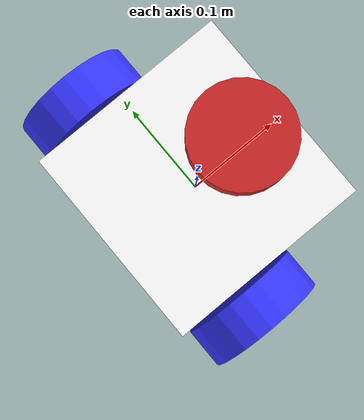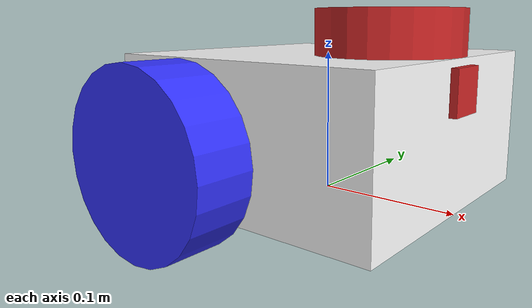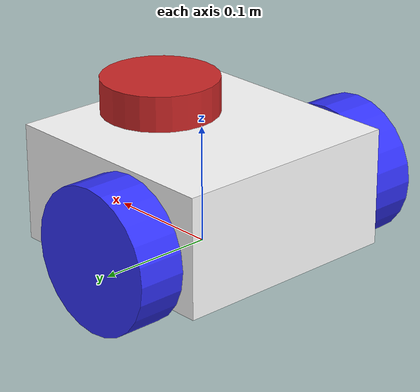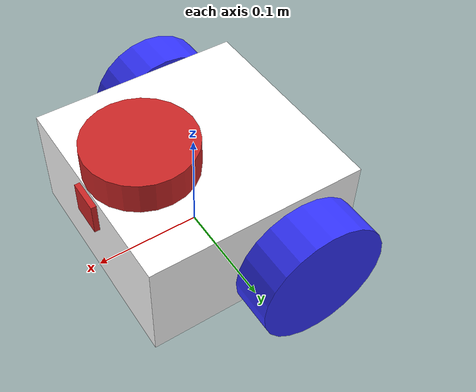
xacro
<?xml version="1.0"?>
<robot xmlns:xacro="http://www.ros.org/wiki/xacro"  name="robot">

    <xacro:include filename="robot_core.xacro" />
    <xacro:include filename="gazebo_control.xacro"/>
    <xacro:include filename="lidar.xacro"/>
    <xacro:include filename="camera.xacro"/>

</robot>

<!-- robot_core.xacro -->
<robot xmlns:xacro="http://www.ros.org/wiki/xacro" >

    <xacro:include filename="inertial_macros.xacro"/>

    <material name="white">
        <color rgba="1 1 1 1" />
    </material>

    <material name="orange">
        <color rgba="1 0.3 0.1 1"/>
    </material>

    <material name="blue">
        <color rgba="0.2 0.2 1 1"/>
    </material>

    <material name="black">
        <color rgba="0 0 0 1"/>
    </material>

    <!-- BASE LINK -->

    <link name="base_link">

    </link>

    <!-- CHASSIS LINK -->

    <joint name="chassis_joint" type="fixed">
        <parent link="base_link"/>
        <child link="chassis"/>
        <origin xyz="-0.1 0 0"/>
    </joint>

    <link name="chassis">
        <visual>
            <origin xyz="0.1 0 0.05"/>
            <geometry>
                <box size="0.2 0.2 0.10"/>
            </geometry>
            <material name="white"/>
        </visual>
        <collision>
            <origin xyz="0.1 0 0.05"/>
            <geometry>
                <box size="0.2 0.2 0.10"/>
            </geometry>
        </collision>
        <xacro:inertial_box mass="0.5" x="0.2" y="0.2" z="0.10">
            <origin xyz="0.1 0 0.05" rpy="0 0 0"/>
        </xacro:inertial_box>
    </link>

    <gazebo reference="chassis">
        <material>Gazebo/White</material>
    </gazebo>

    <!-- LEFT WHEEL LINK -->

    <joint name="left_wheel_joint" type="continuous">
        <parent link="chassis"/>
        <child link="left_wheel"/>
        <origin xyz="0.065 0.125 0.04" rpy="-${pi/2} 0 0" />
        <axis xyz="0 0 1"/>
    </joint>

    <link name="left_wheel">
        <visual>
            <geometry>
                <cylinder radius="0.06" length="0.04"/>
            </geometry>
            <material name="blue"/>
        </visual>
        <collision>
            <geometry>
                <cylinder radius="0.06" length="0.04"/>
            </geometry>
        </collision>
        <xacro:inertial_cylinder mass="0.1" length="0.04" radius="0.06">
            <origin xyz="0 0 0" rpy="0 0 0"/>
        </xacro:inertial_cylinder>
    </link>

    <gazebo reference="left_wheel">
        <material>Gazebo/Blue</material>
    </gazebo>

    <!-- RIGHT WHEEL LINK -->

    <joint name="right_wheel_joint" type="continuous">
        <parent link="chassis"/>
        <child link="right_wheel"/>
        <origin xyz="0.065 -0.125 0.04" rpy="${pi/2} 0 0" />
        <axis xyz="0 0 -1"/>
    </joint>

    <link name="right_wheel">
        <visual>
            <geometry>
                <cylinder radius="0.06" length="0.04"/>
            </geometry>
            <material name="blue"/>
        </visual>
        <collision>
            <geometry>
                <cylinder radius="0.06" length="0.04"/>
            </geometry>
        </collision>
        <xacro:inertial_cylinder mass="0.1" length="0.04" radius="0.06">
            <origin xyz="0 0 0" rpy="0 0 0"/>
        </xacro:inertial_cylinder>
    </link>

    <gazebo reference="right_wheel">
        <material>Gazebo/Blue</material>
    </gazebo>

    <!-- CASTER WHEEL LINK -->

    <joint name="caster_wheel_joint" type="fixed">
        <parent link="chassis"/>
        <child link="caster_wheel"/>
        <origin xyz="0.161 0 0"/>
    </joint>

    <link name="caster_wheel">
        <visual>
            <geometry>
                <sphere radius="0.021"/>
            </geometry>
            <material name="black"/>
        </visual>
        <collision>
            <geometry>
                <sphere radius="0.021"/>
            </geometry>
        </collision>
        <xacro:inertial_sphere mass="0.1" radius="0.021">
            <origin xyz="0 0 0" rpy="0 0 0"/>
        </xacro:inertial_sphere>
    </link>

    <gazebo reference="caster_wheel">
        <material>Gazebo/Black</material>
        <mu1 value="0.001"/>
        <mu2 value="0.001"/>
    </gazebo>

</robot>

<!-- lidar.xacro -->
<robot xmlns:xacro="http://www.ros.org/wiki/xacro"  name="robot">

    <!-- LASER LINK AND MODEL -->
    <joint name="laser_joint" type="fixed">
        <origin xyz="0.15 0.0 0.11" rpy="0.0 0.0 0.0"/>
        <parent link="chassis"/>
        <child link="laser_frame"/>

    </joint>

    <link name="laser_frame">
        <visual>
            <geometry>
                <cylinder radius="0.05" length="0.04"/>
            </geometry>
            <material name="red"></material>
        </visual>

        <collision>
            <geometry>
                <cylinder radius="0.05" length="0.04"/>
            </geometry>
        </collision>

        <xacro:inertial_cylinder mass="0.1" length="0.04" radius="0.05">
            <orgin xyz="0 0 0" rpy="0 0 0"/>
        </xacro:inertial_cylinder>
    </link>

    <!-- LASER PLUGIN IN GAZEBO -->
    <gazebo reference="laser_frame">
        <material>Gazebo/Red</material>
        <sensor name="laser" type="ray">
            <update_rate>10</update_rate>
            <pose> 0 0 0 0 0 0 </pose>
            <visualize>false</visualize>
            <ray>
                <scan>
                    <horizontal>
                        <samples>360</samples>
                        <resolution>1</resolution>
                        <min_angle>-3.14</min_angle>
                        <max_angle>3.14</max_angle>
                    </horizontal>
                </scan>

                <range>
                    <min>0.3</min>
                    <max>12</max>
                    <resolution>0.01</resolution>
                </range>
            </ray>

            <plugin name="laser_controller" filename="libgazebo_ros_ray_sensor.so">
                <ros>
                    <argument>~/out:=scan</argument>
                </ros>
                <output_type>sensor_msgs/LaserScan</output_type>
                <frame_name>laser_frame</frame_name>
            </plugin>
            <!-- Name of plugin is your choice -->
        <!-- Sensor |camera,ray,imu,magnetometer,gps,force_torque,contact,sonar,rfidtag,rfid| -->
        </sensor>

    </gazebo>
</robot>

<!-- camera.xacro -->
<robot xmlns:xacro="http://www.ros.org/wiki/xacro"  name="robot">

    <!-- LASER LINK AND MODEL -->
    <joint name="camera_joint" type="fixed">
        <origin xyz="0.2 0.0 0.08" rpy="0.0 0.0 0.0"/>
        <parent link="chassis"/>
        <child link="camera_link"/>

    </joint>

    <link name="camera_link">
        <visual>
            <geometry>
                <box size="0.01 0.03 0.03"/>
            </geometry>
            <material name="red"></material>
        </visual>
    </link>

    <joint name="camera_optical_joint" type="fixed">
        <origin xyz="0 0 0" rpy="${-pi/2} 0.0 ${-pi/2}"/>
        <parent link="camera_link"/>
        <child link="camera_link_optical"/>

    </joint>

    <link name="camera_link_optical"/>

    <!-- Camera PLUGIN IN GAZEBO -->
    <gazebo reference="camera_link">
        <material>Gazebo/Red</material>
        <sensor name="camera" type="camera">
            <update_rate>10</update_rate>
            <pose> 0 0 0 0 0 0 </pose>
            <visualize>true</visualize>
            <camera>
                <horizontal_fov>1.089</horizontal_fov>
                <image>
                    <format>R8G8B8</format>
                    <width>640</width>
                    <height>480</height>
                </image>
                <clip>
                    <near>0.05</near>
                    <far>8.0</far>
                </clip>
            </camera>

            <plugin name="camera_controller" filename="libgazebo_ros_camera.so">
                <frame_name>camera_link_optical</frame_name>
            </plugin>
        </sensor>
        <!-- Name of plugin is your choice -->
        <!-- Sensor |camera,ray,imu,magnetometer,gps,force_torque,contact,sonar,rfidtag,rfid| -->
    </gazebo>

</robot>
